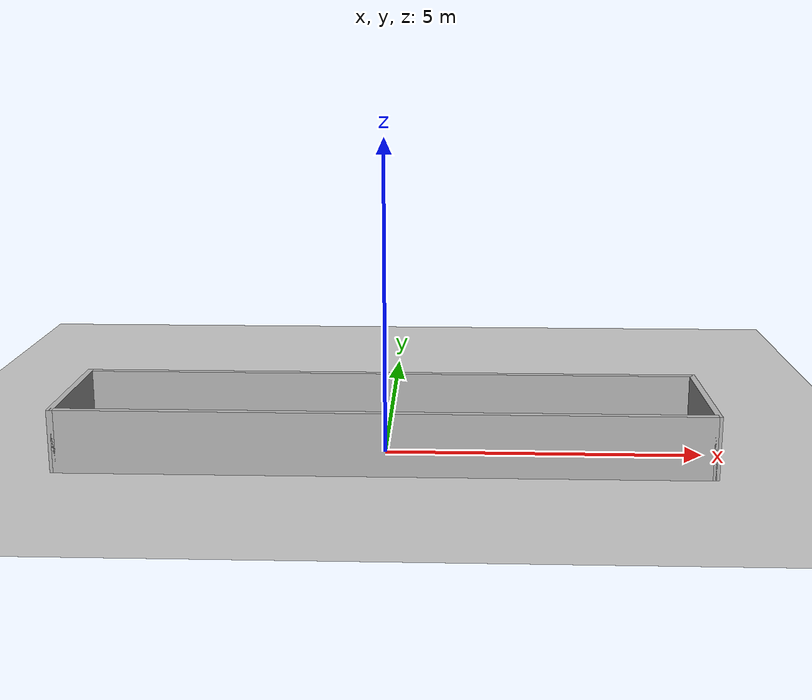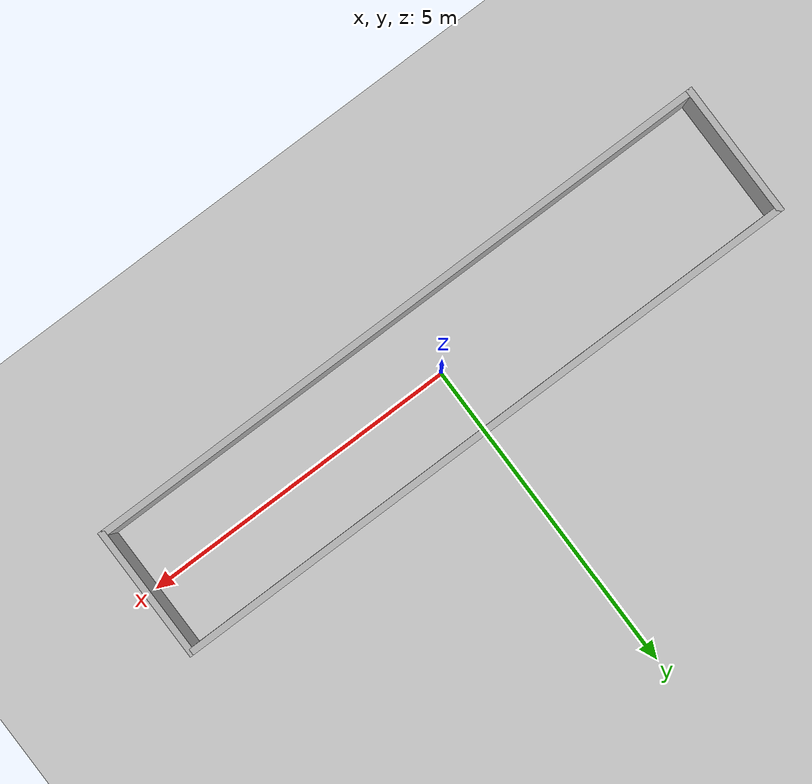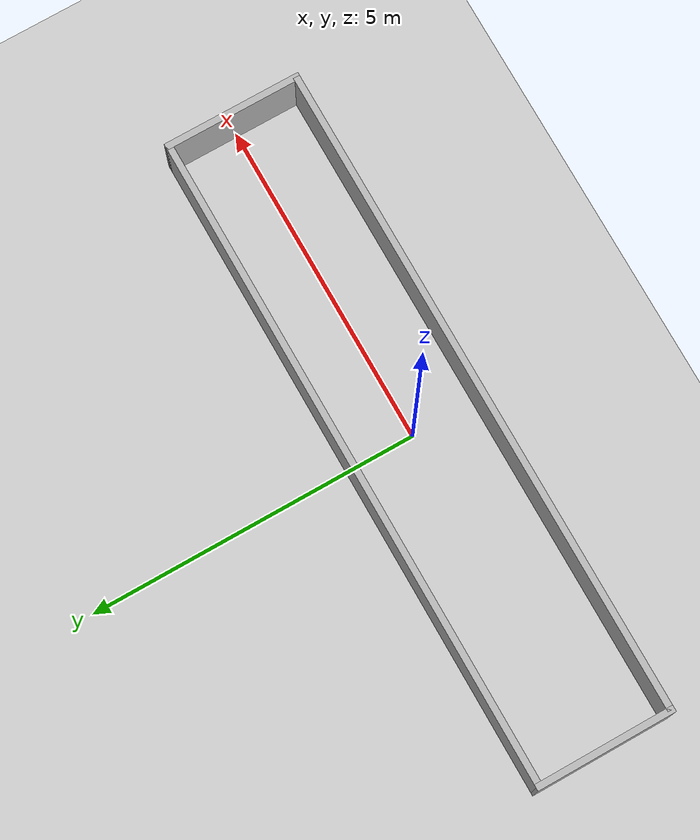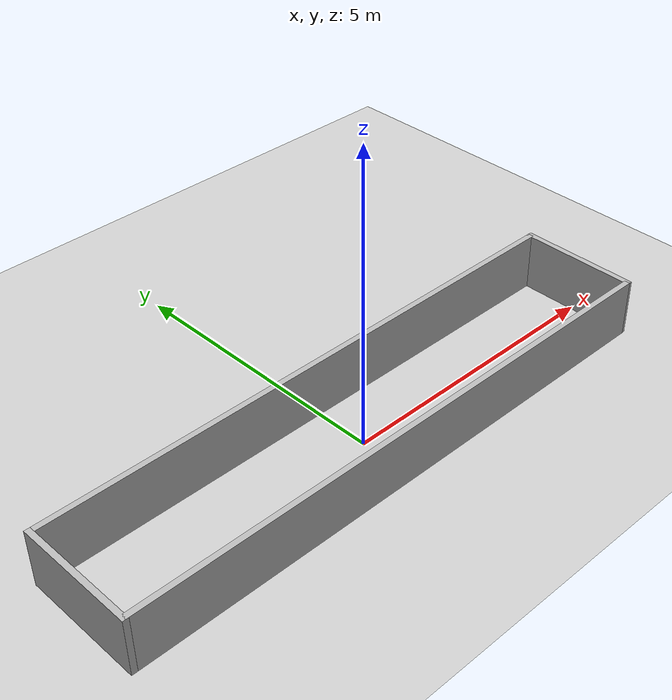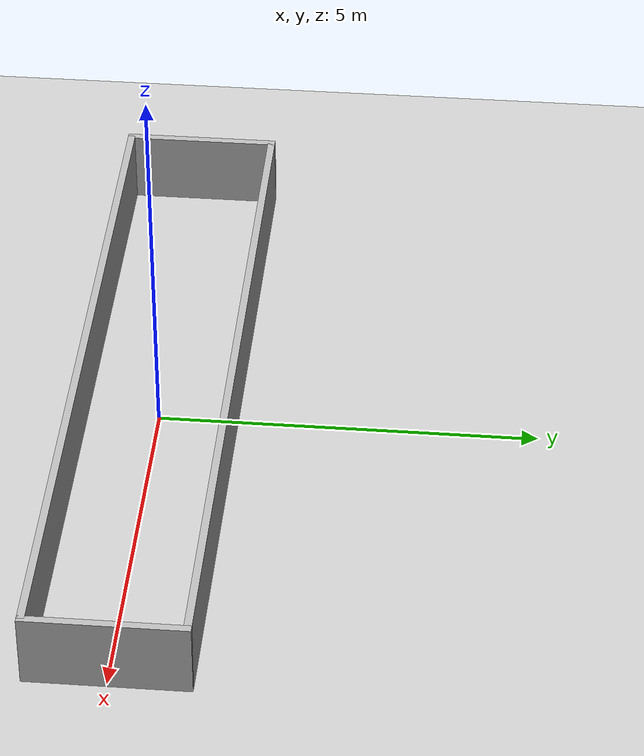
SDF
<?xml version="1.0" ?>
<sdf version="1.6">
  <world name="simple_corridor_world">
    <include><uri>model://sun</uri></include>
    <include><uri>model://ground_plane</uri></include>

    <!-- 左壁 (Y = +1.0m) -->
    <model name="wall_left">
      <static>true</static>
      <pose>0 1.0 0.5 0 0 0</pose>
      <link name="link">
        <collision name="c"><geometry><box><size>10 0.1 1</size></box></geometry></collision>
        <visual name="v"><geometry><box><size>10 0.1 1</size></box></geometry></visual>
      </link>
    </model>

    <!-- 右壁 (Y = -1.0m) -->
    <model name="wall_right">
      <static>true</static>
      <pose>0 -1.0 0.5 0 0 0</pose>
      <link name="link">
        <collision name="c"><geometry><box><size>10 0.1 1</size></box></geometry></collision>
        <visual name="v"><geometry><box><size>10 0.1 1</size></box></geometry></visual>
      </link>
    </model>

    <!-- 奥壁 (X = +5.0m) -->
    <model name="wall_front">
      <static>true</static>
      <pose>5.0 0 0.5 0 0 0</pose>
      <link name="link">
        <collision name="c"><geometry><box><size>0.1 2.1 1</size></box></geometry></collision>
        <visual name="v"><geometry><box><size>0.1 2.1 1</size></box></geometry></visual>
      </link>
    </model>

    <!-- 手前壁 (X = -5.0m) -->
    <model name="wall_back">
      <static>true</static>
      <pose>-5.0 0 0.5 0 0 0</pose>
      <link name="link">
        <collision name="c"><geometry><box><size>0.1 2.1 1</size></box></geometry></collision>
        <visual name="v"><geometry><box><size>0.1 2.1 1</size></box></geometry></visual>
      </link>
    </model>
  </world>
</sdf><?xml version="1.0" ?>
<sdf version="1.6">
  <world name="simple_corridor_world">
    <include><uri>model://sun</uri></include>
    <include><uri>model://ground_plane</uri></include>

    <!-- 左壁 (Y = +1.0m) -->
    <model name="wall_left">
      <static>true</static>
      <pose>0 1.0 0.5 0 0 0</pose>
      <link name="link">
        <collision name="c"><geometry><box><size>10 0.1 1</size></box></geometry></collision>
        <visual name="v"><geometry><box><size>10 0.1 1</size></box></geometry></visual>
      </link>
    </model>

    <!-- 右壁 (Y = -1.0m) -->
    <model name="wall_right">
      <static>true</static>
      <pose>0 -1.0 0.5 0 0 0</pose>
      <link name="link">
        <collision name="c"><geometry><box><size>10 0.1 1</size></box></geometry></collision>
        <visual name="v"><geometry><box><size>10 0.1 1</size></box></geometry></visual>
      </link>
    </model>

    <!-- 奥壁 (X = +5.0m) -->
    <model name="wall_front">
      <static>true</static>
      <pose>5.0 0 0.5 0 0 0</pose>
      <link name="link">
        <collision name="c"><geometry><box><size>0.1 2.1 1</size></box></geometry></collision>
        <visual name="v"><geometry><box><size>0.1 2.1 1</size></box></geometry></visual>
      </link>
    </model>

    <!-- 手前壁 (X = -5.0m) -->
    <model name="wall_back">
      <static>true</static>
      <pose>-5.0 0 0.5 0 0 0</pose>
      <link name="link">
        <collision name="c"><geometry><box><size>0.1 2.1 1</size></box></geometry></collision>
        <visual name="v"><geometry><box><size>0.1 2.1 1</size></box></geometry></visual>
      </link>
    </model>
  </world>
</sdf><?xml version="1.0" ?>
<sdf version="1.6">
  <world name="simple_corridor_world">
    <include><uri>model://sun</uri></include>
    <include><uri>model://ground_plane</uri></include>

    <!-- 左壁 (Y = +1.0m) -->
    <model name="wall_left">
      <static>true</static>
      <pose>0 1.0 0.5 0 0 0</pose>
      <link name="link">
        <collision name="c"><geometry><box><size>10 0.1 1</size></box></geometry></collision>
        <visual name="v"><geometry><box><size>10 0.1 1</size></box></geometry></visual>
      </link>
    </model>

    <!-- 右壁 (Y = -1.0m) -->
    <model name="wall_right">
      <static>true</static>
      <pose>0 -1.0 0.5 0 0 0</pose>
      <link name="link">
        <collision name="c"><geometry><box><size>10 0.1 1</size></box></geometry></collision>
        <visual name="v"><geometry><box><size>10 0.1 1</size></box></geometry></visual>
      </link>
    </model>

    <!-- 奥壁 (X = +5.0m) -->
    <model name="wall_front">
      <static>true</static>
      <pose>5.0 0 0.5 0 0 0</pose>
      <link name="link">
        <collision name="c"><geometry><box><size>0.1 2.1 1</size></box></geometry></collision>
        <visual name="v"><geometry><box><size>0.1 2.1 1</size></box></geometry></visual>
      </link>
    </model>

    <!-- 手前壁 (X = -5.0m) -->
    <model name="wall_back">
      <static>true</static>
      <pose>-5.0 0 0.5 0 0 0</pose>
      <link name="link">
        <collision name="c"><geometry><box><size>0.1 2.1 1</size></box></geometry></collision>
        <visual name="v"><geometry><box><size>0.1 2.1 1</size></box></geometry></visual>
      </link>
    </model>

    <include>
      <uri>model://turtlebot3_burger</uri>
      <name>turtlebot3_burger</name>
      <pose>0.0 0.0 0.25 0 0 0</pose>
    </include>
  </world>
</sdf>
